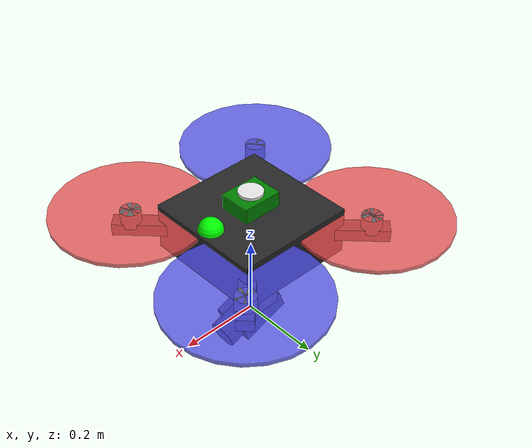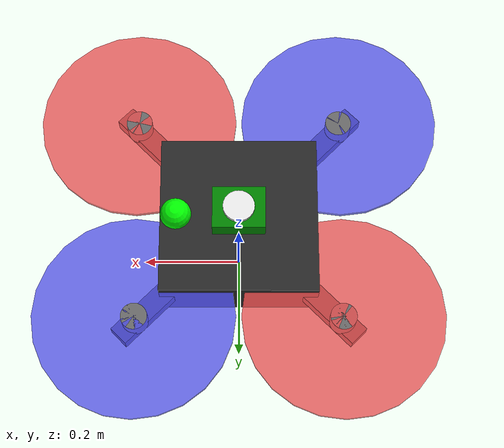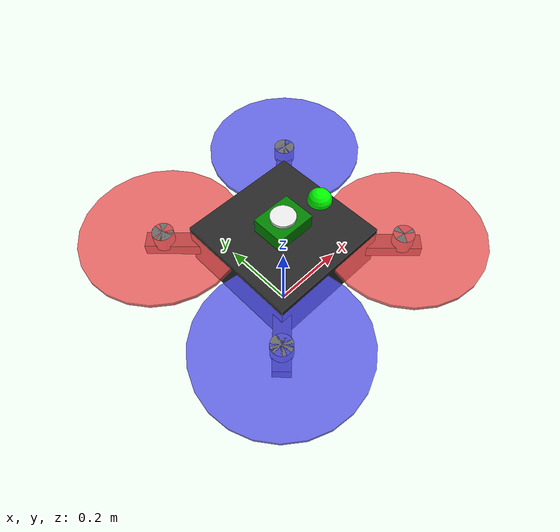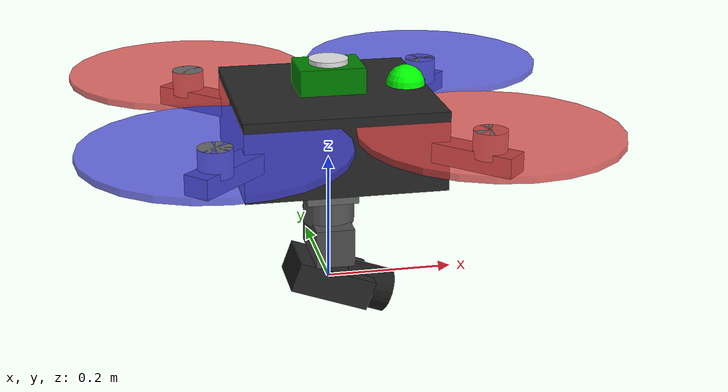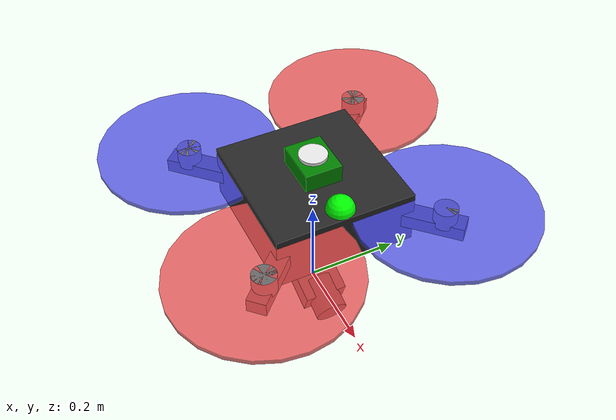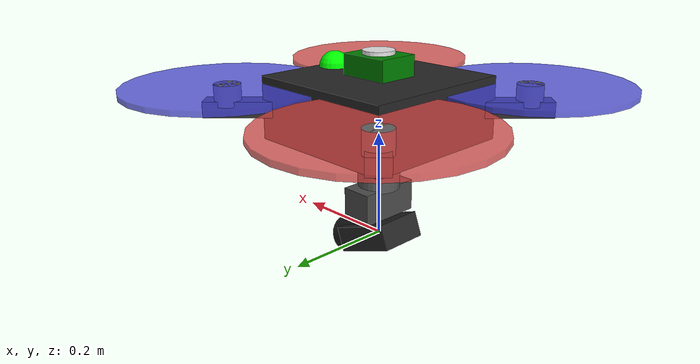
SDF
<?xml version="1.0" ?>
<sdf version="1.9">
  <model name="f11_isr_camera">
    <pose>0 0 0.25 0 0 0</pose>

    <!-- F-11 Base Link (Main Body) -->
    <link name="base_link">
      <inertial>
        <!-- Total mass: 4.5 kg base + 1.8 kg payload = 6.3 kg -->
        <mass>6.3</mass>
        <!-- CoG shifted down due to bottom-mounted payload -->
        <pose>0 0 -0.05 0 0 0</pose>
        <inertia>
          <!-- Adjusted inertia for heavier payload -->
          <ixx>0.115</ixx>
          <ixy>0</ixy>
          <ixz>0</ixz>
          <iyy>0.115</iyy>
          <iyz>0</iyz>
          <izz>0.175</izz>
        </inertia>
      </inertial>

      <!-- Main body visual - central frame -->
      <visual name="body_visual">
        <geometry>
          <box>
            <size>0.30 0.30 0.12</size>
          </box>
        </geometry>
        <material>
          <ambient>0.1 0.1 0.1 1</ambient>
          <diffuse>0.15 0.15 0.15 1</diffuse>
          <specular>0.3 0.3 0.3 1</specular>
        </material>
      </visual>

      <!-- Battery bay visual -->
      <visual name="battery_visual">
        <pose>0 0 -0.04 0 0 0</pose>
        <geometry>
          <box>
            <size>0.18 0.12 0.06</size>
          </box>
        </geometry>
        <material>
          <ambient>0.2 0.2 0.25 1</ambient>
          <diffuse>0.25 0.25 0.3 1</diffuse>
        </material>
      </visual>

      <!-- Jetson Orin NX housing visual -->
      <visual name="compute_visual">
        <pose>0 0 0.08 0 0 0</pose>
        <geometry>
          <box>
            <size>0.10 0.08 0.04</size>
          </box>
        </geometry>
        <material>
          <ambient>0.0 0.4 0.0 1</ambient>
          <diffuse>0.0 0.5 0.0 1</diffuse>
        </material>
      </visual>

      <!-- Front marker for orientation (green) -->
      <visual name="front_marker">
        <pose>0.12 0 0.06 0 0 0</pose>
        <geometry>
          <sphere>
            <radius>0.03</radius>
          </sphere>
        </geometry>
        <material>
          <ambient>0 1 0 1</ambient>
          <diffuse>0 1 0 1</diffuse>
        </material>
      </visual>

      <!-- Arms visual representation -->
      <visual name="arm_fr_visual">
        <pose>0.1375 -0.1375 0 0 0 -0.785398</pose>
        <geometry>
          <box>
            <size>0.25 0.04 0.03</size>
          </box>
        </geometry>
        <material>
          <ambient>0.15 0.15 0.15 1</ambient>
          <diffuse>0.2 0.2 0.2 1</diffuse>
        </material>
      </visual>

      <visual name="arm_fl_visual">
        <pose>0.1375 0.1375 0 0 0 0.785398</pose>
        <geometry>
          <box>
            <size>0.25 0.04 0.03</size>
          </box>
        </geometry>
        <material>
          <ambient>0.15 0.15 0.15 1</ambient>
          <diffuse>0.2 0.2 0.2 1</diffuse>
        </material>
      </visual>

      <visual name="arm_br_visual">
        <pose>-0.1375 -0.1375 0 0 0 0.785398</pose>
        <geometry>
          <box>
            <size>0.25 0.04 0.03</size>
          </box>
        </geometry>
        <material>
          <ambient>0.15 0.15 0.15 1</ambient>
          <diffuse>0.2 0.2 0.2 1</diffuse>
        </material>
      </visual>

      <visual name="arm_bl_visual">
        <pose>-0.1375 0.1375 0 0 0 -0.785398</pose>
        <geometry>
          <box>
            <size>0.25 0.04 0.03</size>
          </box>
        </geometry>
        <material>
          <ambient>0.15 0.15 0.15 1</ambient>
          <diffuse>0.2 0.2 0.2 1</diffuse>
        </material>
      </visual>

      <collision name="body_collision">
        <geometry>
          <box>
            <size>0.55 0.55 0.15</size>
          </box>
        </geometry>
      </collision>
    </link>

    <!-- Rotor 0 (Front Right - CW) -->
    <link name="rotor_0">
      <pose>0.195 -0.195 0.04 0 0 0</pose>
      <inertial>
        <mass>0.025</mass>
        <inertia>
          <ixx>1.0e-05</ixx>
          <ixy>0</ixy>
          <ixz>0</ixz>
          <iyy>5.0e-04</iyy>
          <iyz>0</iyz>
          <izz>5.0e-04</izz>
        </inertia>
      </inertial>
      <visual name="rotor_visual">
        <geometry>
          <cylinder>
            <radius>0.19</radius>
            <length>0.01</length>
          </cylinder>
        </geometry>
        <material>
          <ambient>0.8 0.2 0.2 0.8</ambient>
          <diffuse>0.9 0.3 0.3 0.8</diffuse>
        </material>
      </visual>
      <visual name="motor_visual">
        <pose>0 0 -0.015 0 0 0</pose>
        <geometry>
          <cylinder>
            <radius>0.025</radius>
            <length>0.04</length>
          </cylinder>
        </geometry>
        <material>
          <ambient>0.3 0.3 0.3 1</ambient>
          <diffuse>0.4 0.4 0.4 1</diffuse>
        </material>
      </visual>
    </link>

    <!-- Rotor 1 (Back Left - CW) -->
    <link name="rotor_1">
      <pose>-0.195 0.195 0.04 0 0 0</pose>
      <inertial>
        <mass>0.025</mass>
        <inertia>
          <ixx>1.0e-05</ixx>
          <ixy>0</ixy>
          <ixz>0</ixz>
          <iyy>5.0e-04</iyy>
          <iyz>0</iyz>
          <izz>5.0e-04</izz>
        </inertia>
      </inertial>
      <visual name="rotor_visual">
        <geometry>
          <cylinder>
            <radius>0.19</radius>
            <length>0.01</length>
          </cylinder>
        </geometry>
        <material>
          <ambient>0.8 0.2 0.2 0.8</ambient>
          <diffuse>0.9 0.3 0.3 0.8</diffuse>
        </material>
      </visual>
      <visual name="motor_visual">
        <pose>0 0 -0.015 0 0 0</pose>
        <geometry>
          <cylinder>
            <radius>0.025</radius>
            <length>0.04</length>
          </cylinder>
        </geometry>
        <material>
          <ambient>0.3 0.3 0.3 1</ambient>
          <diffuse>0.4 0.4 0.4 1</diffuse>
        </material>
      </visual>
    </link>

    <!-- Rotor 2 (Front Left - CCW) -->
    <link name="rotor_2">
      <pose>0.195 0.195 0.04 0 0 0</pose>
      <inertial>
        <mass>0.025</mass>
        <inertia>
          <ixx>1.0e-05</ixx>
          <ixy>0</ixy>
          <ixz>0</ixz>
          <iyy>5.0e-04</iyy>
          <iyz>0</iyz>
          <izz>5.0e-04</izz>
        </inertia>
      </inertial>
      <visual name="rotor_visual">
        <geometry>
          <cylinder>
            <radius>0.19</radius>
            <length>0.01</length>
          </cylinder>
        </geometry>
        <material>
          <ambient>0.2 0.2 0.8 0.8</ambient>
          <diffuse>0.3 0.3 0.9 0.8</diffuse>
        </material>
      </visual>
      <visual name="motor_visual">
        <pose>0 0 -0.015 0 0 0</pose>
        <geometry>
          <cylinder>
            <radius>0.025</radius>
            <length>0.04</length>
          </cylinder>
        </geometry>
        <material>
          <ambient>0.3 0.3 0.3 1</ambient>
          <diffuse>0.4 0.4 0.4 1</diffuse>
        </material>
      </visual>
    </link>

    <!-- Rotor 3 (Back Right - CCW) -->
    <link name="rotor_3">
      <pose>-0.195 -0.195 0.04 0 0 0</pose>
      <inertial>
        <mass>0.025</mass>
        <inertia>
          <ixx>1.0e-05</ixx>
          <ixy>0</ixy>
          <ixz>0</ixz>
          <iyy>5.0e-04</iyy>
          <iyz>0</iyz>
          <izz>5.0e-04</izz>
        </inertia>
      </inertial>
      <visual name="rotor_visual">
        <geometry>
          <cylinder>
            <radius>0.19</radius>
            <length>0.01</length>
          </cylinder>
        </geometry>
        <material>
          <ambient>0.2 0.2 0.8 0.8</ambient>
          <diffuse>0.3 0.3 0.9 0.8</diffuse>
        </material>
      </visual>
      <visual name="motor_visual">
        <pose>0 0 -0.015 0 0 0</pose>
        <geometry>
          <cylinder>
            <radius>0.025</radius>
            <length>0.04</length>
          </cylinder>
        </geometry>
        <material>
          <ambient>0.3 0.3 0.3 1</ambient>
          <diffuse>0.4 0.4 0.4 1</diffuse>
        </material>
      </visual>
    </link>

    <!-- Gimbal Mount Link -->
    <link name="gimbal_mount_link">
      <pose>0 0 -0.10 0 0 0</pose>
      <inertial>
        <mass>0.2</mass>
        <inertia>
          <ixx>0.0005</ixx>
          <ixy>0</ixy>
          <ixz>0</ixz>
          <iyy>0.0005</iyy>
          <iyz>0</iyz>
          <izz>0.0003</izz>
        </inertia>
      </inertial>
      <visual name="mount_visual">
        <geometry>
          <box>
            <size>0.08 0.08 0.03</size>
          </box>
        </geometry>
        <material>
          <ambient>0.3 0.3 0.3 1</ambient>
          <diffuse>0.4 0.4 0.4 1</diffuse>
        </material>
      </visual>
    </link>

    <!-- Gimbal Yaw Link -->
    <link name="gimbal_yaw_link">
      <pose>0 0 -0.13 0 0 0</pose>
      <inertial>
        <mass>0.3</mass>
        <inertia>
          <ixx>0.0008</ixx>
          <ixy>0</ixy>
          <ixz>0</ixz>
          <iyy>0.0008</iyy>
          <iyz>0</iyz>
          <izz>0.0005</izz>
        </inertia>
      </inertial>
      <visual name="yaw_visual">
        <geometry>
          <cylinder>
            <radius>0.04</radius>
            <length>0.05</length>
          </cylinder>
        </geometry>
        <material>
          <ambient>0.25 0.25 0.25 1</ambient>
          <diffuse>0.35 0.35 0.35 1</diffuse>
        </material>
      </visual>
    </link>

    <!-- Gimbal Pitch Link -->
    <link name="gimbal_pitch_link">
      <pose>0 0 -0.18 0 0 0</pose>
      <inertial>
        <mass>0.25</mass>
        <inertia>
          <ixx>0.0006</ixx>
          <ixy>0</ixy>
          <ixz>0</ixz>
          <iyy>0.0006</iyy>
          <iyz>0</iyz>
          <izz>0.0004</izz>
        </inertia>
      </inertial>
      <visual name="pitch_visual">
        <geometry>
          <box>
            <size>0.06 0.12 0.06</size>
          </box>
        </geometry>
        <material>
          <ambient>0.2 0.2 0.2 1</ambient>
          <diffuse>0.3 0.3 0.3 1</diffuse>
        </material>
      </visual>
    </link>

    <!-- Camera Link (Sony A7R) -->
    <link name="camera_link">
      <pose>0 0 -0.25 0 0.35 0</pose>
      <inertial>
        <mass>0.85</mass>
        <inertia>
          <ixx>0.002</ixx>
          <ixy>0</ixy>
          <ixz>0</ixz>
          <iyy>0.0015</iyy>
          <iyz>0</iyz>
          <izz>0.001</izz>
        </inertia>
      </inertial>
      <!-- Camera body -->
      <visual name="camera_body_visual">
        <geometry>
          <box>
            <size>0.127 0.094 0.048</size>
          </box>
        </geometry>
        <material>
          <ambient>0.1 0.1 0.1 1</ambient>
          <diffuse>0.15 0.15 0.15 1</diffuse>
        </material>
      </visual>
      <!-- Lens -->
      <visual name="lens_visual">
        <pose>0.06 0 0 0 1.5708 0</pose>
        <geometry>
          <cylinder>
            <radius>0.035</radius>
            <length>0.08</length>
          </cylinder>
        </geometry>
        <material>
          <ambient>0.05 0.05 0.05 1</ambient>
          <diffuse>0.1 0.1 0.1 1</diffuse>
        </material>
      </visual>
      <!-- Camera Sensor -->
      <sensor name="isr_camera" type="camera">
        <pose>0.10 0 0 0 0 0</pose>
        <camera>
          <horizontal_fov>1.047</horizontal_fov>
          <image>
            <width>1920</width>
            <height>1080</height>
            <format>R8G8B8</format>
          </image>
          <clip>
            <near>0.1</near>
            <far>1000</far>
          </clip>
          <noise>
            <type>gaussian</type>
            <mean>0</mean>
            <stddev>0.007</stddev>
          </noise>
        </camera>
        <always_on>1</always_on>
        <update_rate>30</update_rate>
        <visualize>true</visualize>
      </sensor>
    </link>

    <!-- Rotor joints -->
    <joint name="rotor_0_joint" type="revolute">
      <parent>base_link</parent>
      <child>rotor_0</child>
      <axis>
        <xyz>0 0 1</xyz>
        <limit>
          <lower>-1e16</lower>
          <upper>1e16</upper>
        </limit>
        <dynamics>
          <damping>0.004</damping>
        </dynamics>
      </axis>
    </joint>

    <joint name="rotor_1_joint" type="revolute">
      <parent>base_link</parent>
      <child>rotor_1</child>
      <axis>
        <xyz>0 0 1</xyz>
        <limit>
          <lower>-1e16</lower>
          <upper>1e16</upper>
        </limit>
        <dynamics>
          <damping>0.004</damping>
        </dynamics>
      </axis>
    </joint>

    <joint name="rotor_2_joint" type="revolute">
      <parent>base_link</parent>
      <child>rotor_2</child>
      <axis>
        <xyz>0 0 1</xyz>
        <limit>
          <lower>-1e16</lower>
          <upper>1e16</upper>
        </limit>
        <dynamics>
          <damping>0.004</damping>
        </dynamics>
      </axis>
    </joint>

    <joint name="rotor_3_joint" type="revolute">
      <parent>base_link</parent>
      <child>rotor_3</child>
      <axis>
        <xyz>0 0 1</xyz>
        <limit>
          <lower>-1e16</lower>
          <upper>1e16</upper>
        </limit>
        <dynamics>
          <damping>0.004</damping>
        </dynamics>
      </axis>
    </joint>

    <!-- Gimbal joints -->
    <joint name="gimbal_mount_joint" type="fixed">
      <parent>base_link</parent>
      <child>gimbal_mount_link</child>
    </joint>

    <joint name="gimbal_yaw_joint" type="revolute">
      <parent>gimbal_mount_link</parent>
      <child>gimbal_yaw_link</child>
      <axis>
        <xyz>0 0 1</xyz>
        <limit>
          <lower>-6.02</lower>
          <upper>6.02</upper>
        </limit>
        <dynamics>
          <damping>0.5</damping>
        </dynamics>
      </axis>
    </joint>

    <joint name="gimbal_pitch_joint" type="revolute">
      <parent>gimbal_yaw_link</parent>
      <child>gimbal_pitch_link</child>
      <axis>
        <xyz>0 1 0</xyz>
        <limit>
          <lower>-2.09</lower>
          <upper>2.09</upper>
        </limit>
        <dynamics>
          <damping>0.5</damping>
        </dynamics>
      </axis>
    </joint>

    <joint name="camera_joint" type="revolute">
      <parent>gimbal_pitch_link</parent>
      <child>camera_link</child>
      <axis>
        <xyz>1 0 0</xyz>
        <limit>
          <lower>-0.785</lower>
          <upper>0.785</upper>
        </limit>
        <dynamics>
          <damping>0.5</damping>
        </dynamics>
      </axis>
    </joint>

    <!-- IMU Sensor Link -->
    <link name="imu_link">
      <pose>0 0 0 0 0 0</pose>
      <inertial>
        <mass>0.015</mass>
        <inertia>
          <ixx>1e-05</ixx>
          <ixy>0</ixy>
          <ixz>0</ixz>
          <iyy>1e-05</iyy>
          <iyz>0</iyz>
          <izz>1e-05</izz>
        </inertia>
      </inertial>
      <sensor name="imu_sensor" type="imu">
        <always_on>1</always_on>
        <update_rate>250</update_rate>
        <imu>
          <angular_velocity>
            <x><noise type="gaussian"><mean>0</mean><stddev>0.009</stddev></noise></x>
            <y><noise type="gaussian"><mean>0</mean><stddev>0.009</stddev></noise></y>
            <z><noise type="gaussian"><mean>0</mean><stddev>0.009</stddev></noise></z>
          </angular_velocity>
          <linear_acceleration>
            <x><noise type="gaussian"><mean>0</mean><stddev>0.017</stddev></noise></x>
            <y><noise type="gaussian"><mean>0</mean><stddev>0.017</stddev></noise></y>
            <z><noise type="gaussian"><mean>0</mean><stddev>0.017</stddev></noise></z>
          </linear_acceleration>
        </imu>
      </sensor>
    </link>

    <joint name="imu_joint" type="fixed">
      <parent>base_link</parent>
      <child>imu_link</child>
    </joint>

    <!-- GPS Link -->
    <link name="gps_link">
      <pose>0 0 0.10 0 0 0</pose>
      <inertial>
        <mass>0.05</mass>
        <inertia>
          <ixx>1e-05</ixx>
          <ixy>0</ixy>
          <ixz>0</ixz>
          <iyy>1e-05</iyy>
          <iyz>0</iyz>
          <izz>1e-05</izz>
        </inertia>
      </inertial>
      <visual name="gps_visual">
        <geometry>
          <cylinder>
            <radius>0.03</radius>
            <length>0.015</length>
          </cylinder>
        </geometry>
        <material>
          <ambient>0.8 0.8 0.8 1</ambient>
          <diffuse>0.9 0.9 0.9 1</diffuse>
        </material>
      </visual>
      <sensor name="gps_sensor" type="navsat">
        <always_on>1</always_on>
        <update_rate>10</update_rate>
      </sensor>
    </link>

    <joint name="gps_joint" type="fixed">
      <parent>base_link</parent>
      <child>gps_link</child>
    </joint>

    <!-- Gimbal Yaw Position Controller -->
    <plugin filename="gz-sim-joint-position-controller-system"
            name="gz::sim::systems::JointPositionController">
      <joint_name>gimbal_yaw_joint</joint_name>
      <topic>/f11_isr/gimbal/yaw</topic>
      <p_gain>10.0</p_gain>
      <i_gain>0.1</i_gain>
      <d_gain>0.5</d_gain>
      <i_max>1.0</i_max>
      <i_min>-1.0</i_min>
      <cmd_max>10.0</cmd_max>
      <cmd_min>-10.0</cmd_min>
    </plugin>

    <!-- Gimbal Pitch Position Controller -->
    <plugin filename="gz-sim-joint-position-controller-system"
            name="gz::sim::systems::JointPositionController">
      <joint_name>gimbal_pitch_joint</joint_name>
      <topic>/f11_isr/gimbal/pitch</topic>
      <p_gain>10.0</p_gain>
      <i_gain>0.1</i_gain>
      <d_gain>0.5</d_gain>
      <i_max>1.0</i_max>
      <i_min>-1.0</i_min>
      <cmd_max>10.0</cmd_max>
      <cmd_min>-10.0</cmd_min>
    </plugin>

    <!-- Gimbal Roll (Camera) Position Controller -->
    <plugin filename="gz-sim-joint-position-controller-system"
            name="gz::sim::systems::JointPositionController">
      <joint_name>camera_joint</joint_name>
      <topic>/f11_isr/gimbal/roll</topic>
      <p_gain>10.0</p_gain>
      <i_gain>0.1</i_gain>
      <d_gain>0.5</d_gain>
      <i_max>1.0</i_max>
      <i_min>-1.0</i_min>
      <cmd_max>10.0</cmd_max>
      <cmd_min>-10.0</cmd_min>
    </plugin>

    <!-- ArduPilot Plugin -->
    <plugin filename="ArduPilotPlugin" name="ArduPilotPlugin">
      <fdm_addr>127.0.0.1</fdm_addr>
      <fdm_port_in>9002</fdm_port_in>
      <fdm_port_out>9003</fdm_port_out>

      <modelXYZToAirplaneXForwardZDown>0 0 0 3.141593 0 0</modelXYZToAirplaneXForwardZDown>
      <gazeboXYZToNED>0 0 0 3.141593 0 0</gazeboXYZToNED>
      <imuName>imu_link::imu_sensor</imuName>

      <!-- Motor 0: Front Right (CW) -->
      <control channel="0">
        <jointName>rotor_0_joint</jointName>
        <useForce>1</useForce>
        <multiplier>1400</multiplier>
        <offset>-0.5</offset>
        <servo_min>1000</servo_min>
        <servo_max>2000</servo_max>
        <type>VELOCITY</type>
        <p_gain>0.25</p_gain>
        <i_gain>0</i_gain>
        <d_gain>0</d_gain>
        <i_max>0</i_max>
        <i_min>0</i_min>
        <cmd_max>3.0</cmd_max>
        <cmd_min>-3.0</cmd_min>
      </control>

      <!-- Motor 1: Back Left (CW) -->
      <control channel="1">
        <jointName>rotor_1_joint</jointName>
        <useForce>1</useForce>
        <multiplier>1400</multiplier>
        <offset>-0.5</offset>
        <servo_min>1000</servo_min>
        <servo_max>2000</servo_max>
        <type>VELOCITY</type>
        <p_gain>0.25</p_gain>
        <i_gain>0</i_gain>
        <d_gain>0</d_gain>
        <i_max>0</i_max>
        <i_min>0</i_min>
        <cmd_max>3.0</cmd_max>
        <cmd_min>-3.0</cmd_min>
      </control>

      <!-- Motor 2: Front Left (CCW) -->
      <control channel="2">
        <jointName>rotor_2_joint</jointName>
        <useForce>1</useForce>
        <multiplier>1400</multiplier>
        <offset>-0.5</offset>
        <servo_min>1000</servo_min>
        <servo_max>2000</servo_max>
        <type>VELOCITY</type>
        <p_gain>0.25</p_gain>
        <i_gain>0</i_gain>
        <d_gain>0</d_gain>
        <i_max>0</i_max>
        <i_min>0</i_min>
        <cmd_max>3.0</cmd_max>
        <cmd_min>-3.0</cmd_min>
      </control>

      <!-- Motor 3: Back Right (CCW) -->
      <control channel="3">
        <jointName>rotor_3_joint</jointName>
        <useForce>1</useForce>
        <multiplier>1400</multiplier>
        <offset>-0.5</offset>
        <servo_min>1000</servo_min>
        <servo_max>2000</servo_max>
        <type>VELOCITY</type>
        <p_gain>0.25</p_gain>
        <i_gain>0</i_gain>
        <d_gain>0</d_gain>
        <i_max>0</i_max>
        <i_min>0</i_min>
        <cmd_max>3.0</cmd_max>
        <cmd_min>-3.0</cmd_min>
      </control>
    </plugin>

  </model>
</sdf>
